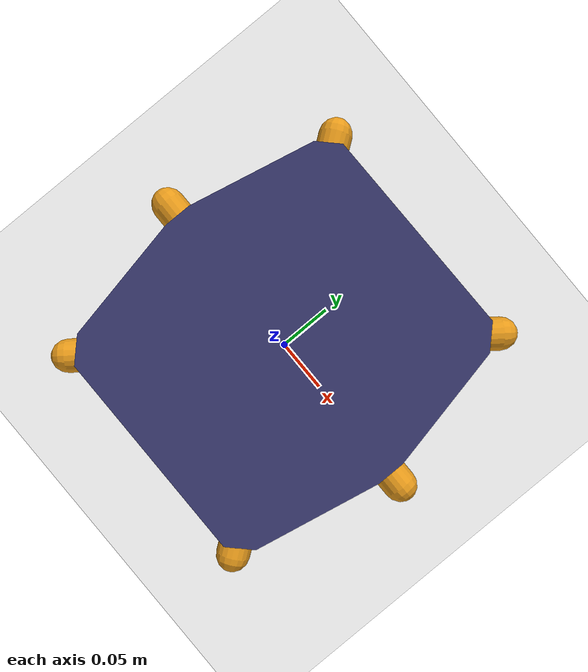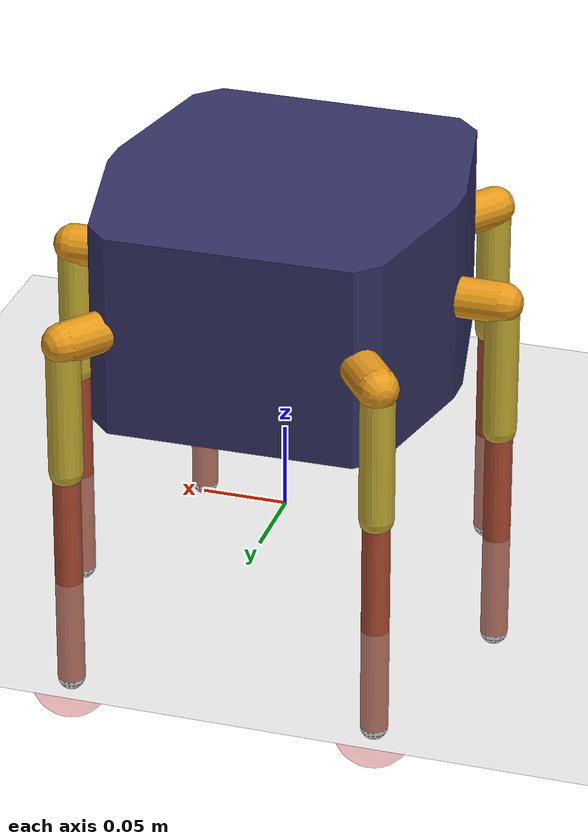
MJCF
<mujoco model="mars_hexapod">

  <compiler angle="radian" meshdir="meshes"/>

  <option timestep="0.002" gravity="0 0 -9.81" integrator="implicit">
    <flag contact="enable"/>
  </option>

  <visual>
    <headlight ambient="0.3 0.3 0.3" diffuse="0.6 0.6 0.6"/>
    <rgba haze="0.15 0.25 0.35 1"/>
    <global offwidth="1920" offheight="1080"/>
  </visual>

  <default>
    <joint damping="0.5" limited="true" armature="0.01"/>
    <geom condim="3" friction="0.8 0.005 0.0001" margin="0.001"/>
  </default>

  <asset>
    <mesh name="body_mesh" file="body.stl" smoothnormal="true"/>
    <texture name="grid" type="2d" builtin="checker" width="512" height="512"
             rgb1="0.8 0.8 0.8" rgb2="0.6 0.6 0.6"/>
    <material name="floor_mat" texture="grid" texrepeat="8 8" reflectance="0.2"/>
  </asset>

  <worldbody>
    <light directional="true" pos="0 0 3" dir="0 0.3 -1" castshadow="true"/>
    <camera name="tracking" pos="0.6 -0.4 0.4" xyaxes="0.5 0.866 0 -0.2 0.115 0.97"
            mode="trackcom"/>
    <camera name="side" pos="0.5 0 0.3" xyaxes="0 1 0 -0.5 0 0.866"
            mode="trackcom"/>
    <camera name="top" pos="0 0 1.0" xyaxes="1 0 0 0 1 0" mode="trackcom"/>
    <geom name="floor" type="plane" size="2 2 0.05" material="floor_mat"/>

    <body name="body" pos="0 0 0.1500">
      <freejoint name="root"/>
      <site name="body_imu" pos="0 0 0" type="box" size="0.01 0.01 0.01"
            rgba="0 1 0 0.3"/>
      <geom name="body_shell" type="mesh" mesh="body_mesh"
            rgba="0.2 0.2 0.4 1" mass="0.9480"/>

      <!-- LF leg -->
      <body name="LF_coxa" pos="-0.065596 0.088163 0" euler="0 0 0.639669">
        <joint name="LF_coxa" type="hinge" axis="0 0 1"
               range="-2.0944 2.0944"/>
        <geom name="LF_coxa" type="capsule"
              fromto="0 0 0 0 0.041700 0" size="0.012"
              rgba="0.9 0.6 0.1 1" mass="0.064"/>

        <body name="LF_femur" pos="0 0.041700 0">
          <joint name="LF_femur" type="hinge" axis="1 0 0"
                 range="-2.0944 2.0944"/>
          <geom name="LF_femur" type="capsule"
                fromto="0 0 0 0 0 -0.080000" size="0.01"
                rgba="0.8 0.7 0.2 1" mass="0.064"/>

          <body name="LF_tibia" pos="0 0 -0.080000">
            <joint name="LF_tibia" type="hinge" axis="1 0 0"
                   range="-2.0944 2.0944"/>
            <geom name="LF_tibia" type="capsule"
                  fromto="0 0 0 0 0 -0.133780" size="0.008"
                  rgba="0.7 0.3 0.2 1" mass="0.064"/>
            <geom name="LF_foot" type="sphere"
                  pos="0 0 -0.133780" size="0.008"
                  rgba="0.9 0.9 0.9 1" mass="0.001"/>
            <site name="LF_foot_site" pos="0 0 -0.133780"
                  type="sphere" size="0.0240" rgba="1 0 0 0.3"/>
          </body>
        </body>
      </body>
      <!-- LM leg -->
      <body name="LM_coxa" pos="-0.086000 0.000000 0" euler="0 0 1.570796">
        <joint name="LM_coxa" type="hinge" axis="0 0 1"
               range="-2.0944 2.0944"/>
        <geom name="LM_coxa" type="capsule"
              fromto="0 0 0 0 0.041700 0" size="0.012"
              rgba="0.9 0.6 0.1 1" mass="0.064"/>

        <body name="LM_femur" pos="0 0.041700 0">
          <joint name="LM_femur" type="hinge" axis="1 0 0"
                 range="-2.0944 2.0944"/>
          <geom name="LM_femur" type="capsule"
                fromto="0 0 0 0 0 -0.080000" size="0.01"
                rgba="0.8 0.7 0.2 1" mass="0.064"/>

          <body name="LM_tibia" pos="0 0 -0.080000">
            <joint name="LM_tibia" type="hinge" axis="1 0 0"
                   range="-2.0944 2.0944"/>
            <geom name="LM_tibia" type="capsule"
                  fromto="0 0 0 0 0 -0.133780" size="0.008"
                  rgba="0.7 0.3 0.2 1" mass="0.064"/>
            <geom name="LM_foot" type="sphere"
                  pos="0 0 -0.133780" size="0.008"
                  rgba="0.9 0.9 0.9 1" mass="0.001"/>
            <site name="LM_foot_site" pos="0 0 -0.133780"
                  type="sphere" size="0.0240" rgba="1 0 0 0.3"/>
          </body>
        </body>
      </body>
      <!-- LR leg -->
      <body name="LR_coxa" pos="-0.065596 -0.088163 0" euler="0 0 2.501923">
        <joint name="LR_coxa" type="hinge" axis="0 0 1"
               range="-2.0944 2.0944"/>
        <geom name="LR_coxa" type="capsule"
              fromto="0 0 0 0 0.041700 0" size="0.012"
              rgba="0.9 0.6 0.1 1" mass="0.064"/>

        <body name="LR_femur" pos="0 0.041700 0">
          <joint name="LR_femur" type="hinge" axis="1 0 0"
                 range="-2.0944 2.0944"/>
          <geom name="LR_femur" type="capsule"
                fromto="0 0 0 0 0 -0.080000" size="0.01"
                rgba="0.8 0.7 0.2 1" mass="0.064"/>

          <body name="LR_tibia" pos="0 0 -0.080000">
            <joint name="LR_tibia" type="hinge" axis="1 0 0"
                   range="-2.0944 2.0944"/>
            <geom name="LR_tibia" type="capsule"
                  fromto="0 0 0 0 0 -0.133780" size="0.008"
                  rgba="0.7 0.3 0.2 1" mass="0.064"/>
            <geom name="LR_foot" type="sphere"
                  pos="0 0 -0.133780" size="0.008"
                  rgba="0.9 0.9 0.9 1" mass="0.001"/>
            <site name="LR_foot_site" pos="0 0 -0.133780"
                  type="sphere" size="0.0240" rgba="1 0 0 0.3"/>
          </body>
        </body>
      </body>
      <!-- RF leg -->
      <body name="RF_coxa" pos="0.065596 0.088163 0" euler="0 0 -0.639669">
        <joint name="RF_coxa" type="hinge" axis="0 0 1"
               range="-2.0944 2.0944"/>
        <geom name="RF_coxa" type="capsule"
              fromto="0 0 0 0 0.041700 0" size="0.012"
              rgba="0.9 0.6 0.1 1" mass="0.064"/>

        <body name="RF_femur" pos="0 0.041700 0">
          <joint name="RF_femur" type="hinge" axis="1 0 0"
                 range="-2.0944 2.0944"/>
          <geom name="RF_femur" type="capsule"
                fromto="0 0 0 0 0 -0.080000" size="0.01"
                rgba="0.8 0.7 0.2 1" mass="0.064"/>

          <body name="RF_tibia" pos="0 0 -0.080000">
            <joint name="RF_tibia" type="hinge" axis="1 0 0"
                   range="-2.0944 2.0944"/>
            <geom name="RF_tibia" type="capsule"
                  fromto="0 0 0 0 0 -0.133780" size="0.008"
                  rgba="0.7 0.3 0.2 1" mass="0.064"/>
            <geom name="RF_foot" type="sphere"
                  pos="0 0 -0.133780" size="0.008"
                  rgba="0.9 0.9 0.9 1" mass="0.001"/>
            <site name="RF_foot_site" pos="0 0 -0.133780"
                  type="sphere" size="0.0240" rgba="1 0 0 0.3"/>
          </body>
        </body>
      </body>
      <!-- RM leg -->
      <body name="RM_coxa" pos="0.086000 0.000000 0" euler="0 0 -1.570796">
        <joint name="RM_coxa" type="hinge" axis="0 0 1"
               range="-2.0944 2.0944"/>
        <geom name="RM_coxa" type="capsule"
              fromto="0 0 0 0 0.041700 0" size="0.012"
              rgba="0.9 0.6 0.1 1" mass="0.064"/>

        <body name="RM_femur" pos="0 0.041700 0">
          <joint name="RM_femur" type="hinge" axis="1 0 0"
                 range="-2.0944 2.0944"/>
          <geom name="RM_femur" type="capsule"
                fromto="0 0 0 0 0 -0.080000" size="0.01"
                rgba="0.8 0.7 0.2 1" mass="0.064"/>

          <body name="RM_tibia" pos="0 0 -0.080000">
            <joint name="RM_tibia" type="hinge" axis="1 0 0"
                   range="-2.0944 2.0944"/>
            <geom name="RM_tibia" type="capsule"
                  fromto="0 0 0 0 0 -0.133780" size="0.008"
                  rgba="0.7 0.3 0.2 1" mass="0.064"/>
            <geom name="RM_foot" type="sphere"
                  pos="0 0 -0.133780" size="0.008"
                  rgba="0.9 0.9 0.9 1" mass="0.001"/>
            <site name="RM_foot_site" pos="0 0 -0.133780"
                  type="sphere" size="0.0240" rgba="1 0 0 0.3"/>
          </body>
        </body>
      </body>
      <!-- RR leg -->
      <body name="RR_coxa" pos="0.065596 -0.088163 0" euler="0 0 -2.501923">
        <joint name="RR_coxa" type="hinge" axis="0 0 1"
               range="-2.0944 2.0944"/>
        <geom name="RR_coxa" type="capsule"
              fromto="0 0 0 0 0.041700 0" size="0.012"
              rgba="0.9 0.6 0.1 1" mass="0.064"/>

        <body name="RR_femur" pos="0 0.041700 0">
          <joint name="RR_femur" type="hinge" axis="1 0 0"
                 range="-2.0944 2.0944"/>
          <geom name="RR_femur" type="capsule"
                fromto="0 0 0 0 0 -0.080000" size="0.01"
                rgba="0.8 0.7 0.2 1" mass="0.064"/>

          <body name="RR_tibia" pos="0 0 -0.080000">
            <joint name="RR_tibia" type="hinge" axis="1 0 0"
                   range="-2.0944 2.0944"/>
            <geom name="RR_tibia" type="capsule"
                  fromto="0 0 0 0 0 -0.133780" size="0.008"
                  rgba="0.7 0.3 0.2 1" mass="0.064"/>
            <geom name="RR_foot" type="sphere"
                  pos="0 0 -0.133780" size="0.008"
                  rgba="0.9 0.9 0.9 1" mass="0.001"/>
            <site name="RR_foot_site" pos="0 0 -0.133780"
                  type="sphere" size="0.0240" rgba="1 0 0 0.3"/>
          </body>
        </body>
      </body>
    </body>
  </worldbody>

  <actuator>
    <position name="LF_coxa_act" joint="LF_coxa" kp="20.0" ctrlrange="-2.0944 2.0944" forcerange="-3.430 3.430"/>
    <position name="LF_femur_act" joint="LF_femur" kp="20.0" ctrlrange="-2.0944 2.0944" forcerange="-3.430 3.430"/>
    <position name="LF_tibia_act" joint="LF_tibia" kp="20.0" ctrlrange="-2.0944 2.0944" forcerange="-3.430 3.430"/>
    <position name="LM_coxa_act" joint="LM_coxa" kp="20.0" ctrlrange="-2.0944 2.0944" forcerange="-3.430 3.430"/>
    <position name="LM_femur_act" joint="LM_femur" kp="20.0" ctrlrange="-2.0944 2.0944" forcerange="-3.430 3.430"/>
    <position name="LM_tibia_act" joint="LM_tibia" kp="20.0" ctrlrange="-2.0944 2.0944" forcerange="-3.430 3.430"/>
    <position name="LR_coxa_act" joint="LR_coxa" kp="20.0" ctrlrange="-2.0944 2.0944" forcerange="-3.430 3.430"/>
    <position name="LR_femur_act" joint="LR_femur" kp="20.0" ctrlrange="-2.0944 2.0944" forcerange="-3.430 3.430"/>
    <position name="LR_tibia_act" joint="LR_tibia" kp="20.0" ctrlrange="-2.0944 2.0944" forcerange="-3.430 3.430"/>
    <position name="RF_coxa_act" joint="RF_coxa" kp="20.0" ctrlrange="-2.0944 2.0944" forcerange="-3.430 3.430"/>
    <position name="RF_femur_act" joint="RF_femur" kp="20.0" ctrlrange="-2.0944 2.0944" forcerange="-3.430 3.430"/>
    <position name="RF_tibia_act" joint="RF_tibia" kp="20.0" ctrlrange="-2.0944 2.0944" forcerange="-3.430 3.430"/>
    <position name="RM_coxa_act" joint="RM_coxa" kp="20.0" ctrlrange="-2.0944 2.0944" forcerange="-3.430 3.430"/>
    <position name="RM_femur_act" joint="RM_femur" kp="20.0" ctrlrange="-2.0944 2.0944" forcerange="-3.430 3.430"/>
    <position name="RM_tibia_act" joint="RM_tibia" kp="20.0" ctrlrange="-2.0944 2.0944" forcerange="-3.430 3.430"/>
    <position name="RR_coxa_act" joint="RR_coxa" kp="20.0" ctrlrange="-2.0944 2.0944" forcerange="-3.430 3.430"/>
    <position name="RR_femur_act" joint="RR_femur" kp="20.0" ctrlrange="-2.0944 2.0944" forcerange="-3.430 3.430"/>
    <position name="RR_tibia_act" joint="RR_tibia" kp="20.0" ctrlrange="-2.0944 2.0944" forcerange="-3.430 3.430"/>
  </actuator>

  <sensor>
    <!-- Body IMU -->
    <framequat name="body_quat" objtype="body" objname="body"/>
    <framelinvel name="body_linvel" objtype="body" objname="body"/>
    <frameangvel name="body_angvel" objtype="body" objname="body"/>
    <accelerometer name="imu_accel" site="body_imu"/>
    <gyro name="imu_gyro" site="body_imu"/>

    <!-- Foot contact forces -->
    <touch name="LF_contact" site="LF_foot_site"/>
    <touch name="LM_contact" site="LM_foot_site"/>
    <touch name="LR_contact" site="LR_foot_site"/>
    <touch name="RF_contact" site="RF_foot_site"/>
    <touch name="RM_contact" site="RM_foot_site"/>
    <touch name="RR_contact" site="RR_foot_site"/>

    <!-- Joint positions and velocities -->
    <jointpos name="LF_coxa_pos" joint="LF_coxa"/>
    <jointvel name="LF_coxa_vel" joint="LF_coxa"/>
    <jointpos name="LF_femur_pos" joint="LF_femur"/>
    <jointvel name="LF_femur_vel" joint="LF_femur"/>
    <jointpos name="LF_tibia_pos" joint="LF_tibia"/>
    <jointvel name="LF_tibia_vel" joint="LF_tibia"/>
    <jointpos name="LM_coxa_pos" joint="LM_coxa"/>
    <jointvel name="LM_coxa_vel" joint="LM_coxa"/>
    <jointpos name="LM_femur_pos" joint="LM_femur"/>
    <jointvel name="LM_femur_vel" joint="LM_femur"/>
    <jointpos name="LM_tibia_pos" joint="LM_tibia"/>
    <jointvel name="LM_tibia_vel" joint="LM_tibia"/>
    <jointpos name="LR_coxa_pos" joint="LR_coxa"/>
    <jointvel name="LR_coxa_vel" joint="LR_coxa"/>
    <jointpos name="LR_femur_pos" joint="LR_femur"/>
    <jointvel name="LR_femur_vel" joint="LR_femur"/>
    <jointpos name="LR_tibia_pos" joint="LR_tibia"/>
    <jointvel name="LR_tibia_vel" joint="LR_tibia"/>
    <jointpos name="RF_coxa_pos" joint="RF_coxa"/>
    <jointvel name="RF_coxa_vel" joint="RF_coxa"/>
    <jointpos name="RF_femur_pos" joint="RF_femur"/>
    <jointvel name="RF_femur_vel" joint="RF_femur"/>
    <jointpos name="RF_tibia_pos" joint="RF_tibia"/>
    <jointvel name="RF_tibia_vel" joint="RF_tibia"/>
    <jointpos name="RM_coxa_pos" joint="RM_coxa"/>
    <jointvel name="RM_coxa_vel" joint="RM_coxa"/>
    <jointpos name="RM_femur_pos" joint="RM_femur"/>
    <jointvel name="RM_femur_vel" joint="RM_femur"/>
    <jointpos name="RM_tibia_pos" joint="RM_tibia"/>
    <jointvel name="RM_tibia_vel" joint="RM_tibia"/>
    <jointpos name="RR_coxa_pos" joint="RR_coxa"/>
    <jointvel name="RR_coxa_vel" joint="RR_coxa"/>
    <jointpos name="RR_femur_pos" joint="RR_femur"/>
    <jointvel name="RR_femur_vel" joint="RR_femur"/>
    <jointpos name="RR_tibia_pos" joint="RR_tibia"/>
    <jointvel name="RR_tibia_vel" joint="RR_tibia"/>
  </sensor>

  <keyframe>
    <key name="stand" qpos="0.000000 0.000000 0.150000 1.000000 0.000000 0.000000 0.000000 0.000000 1.361812 -1.286688 0.000000 1.361812 -1.286688 0.000000 1.361812 -1.286688 0.000000 1.361812 -1.286688 0.000000 1.361812 -1.286688 0.000000 1.361812 -1.286688"
         ctrl="0.000000 1.361812 -1.286688 0.000000 1.361812 -1.286688 0.000000 1.361812 -1.286688 0.000000 1.361812 -1.286688 0.000000 1.361812 -1.286688 0.000000 1.361812 -1.286688"/>
  </keyframe>

</mujoco>
